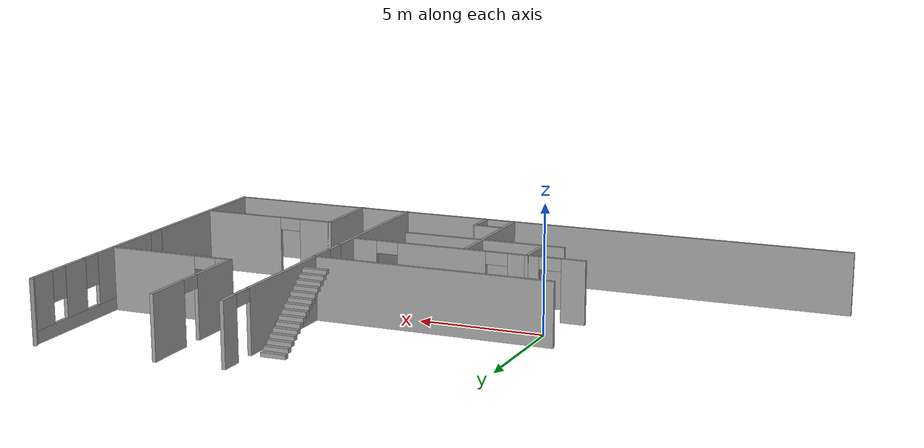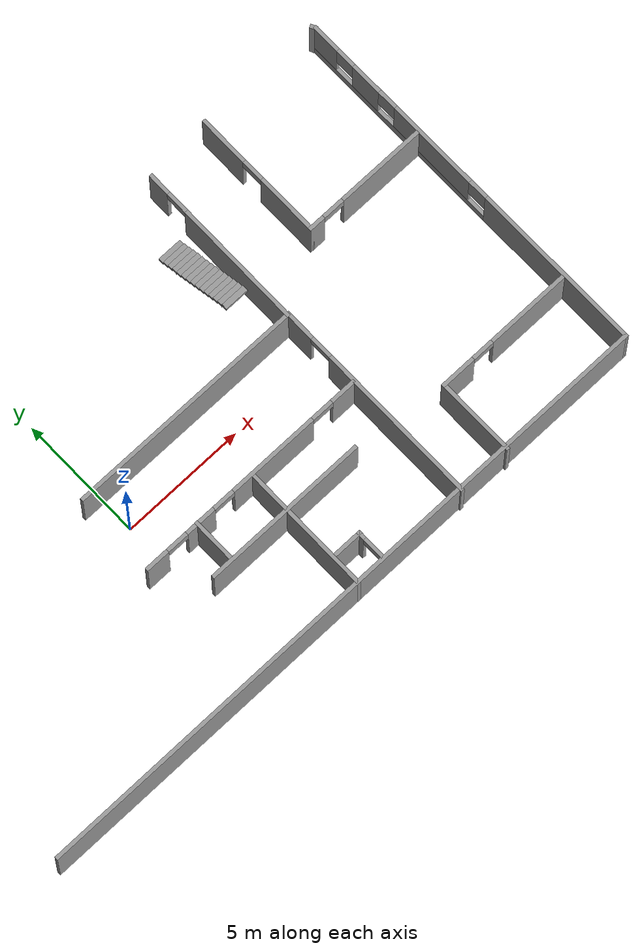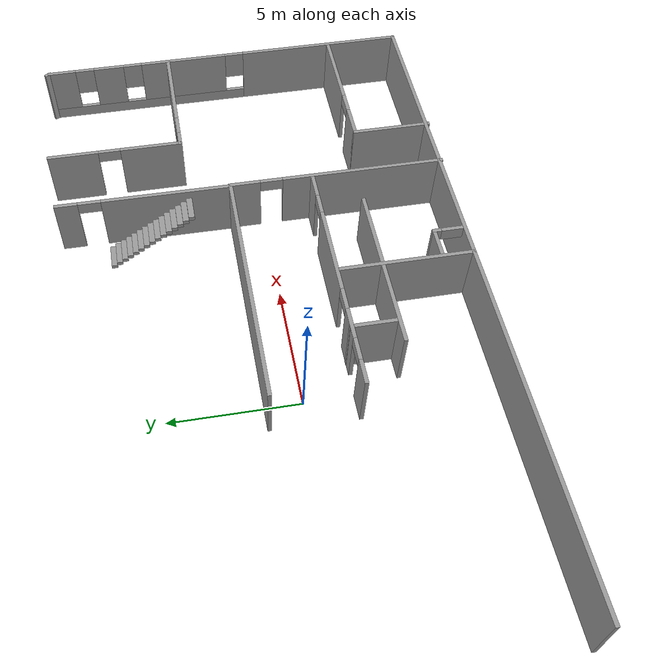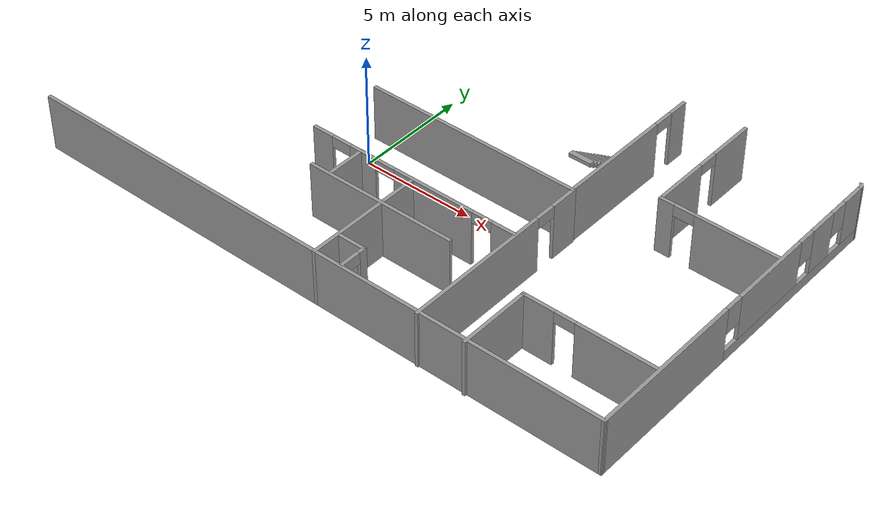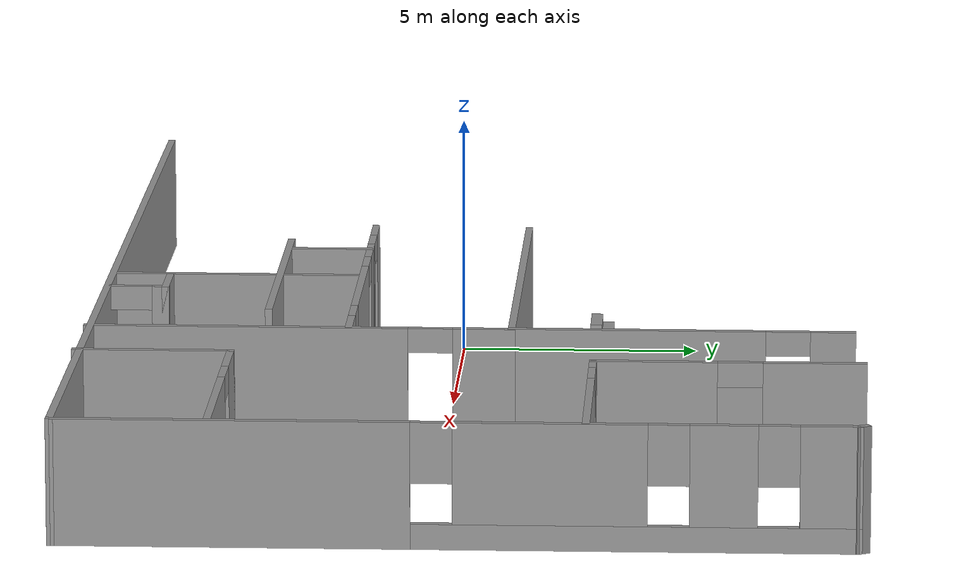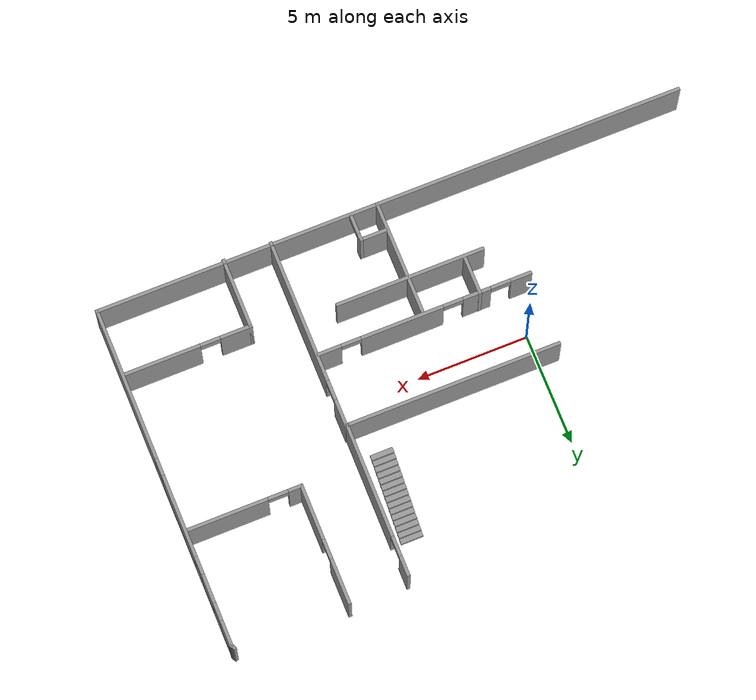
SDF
<sdf version="1.7">
 <model name="Dundler_mifflin">
  <pose>0.058754 0.032766 0 0 -0 0</pose>
  <link name="Stairs_1">
   <visual name="Stairs_1_Visual_0">
    <pose>7.80793 6.29097 0.083333 0 -0 0</pose>
    <geometry><box><size>1 0.233333 0.166667</size></box></geometry>
    <material>
     <script><uri>file://media/materials/scripts/gazebo.material</uri><name>Gazebo/Grey</name></script>
     <ambient>1 1 1 1</ambient>
    </material>
    <meta><layer>0</layer></meta>
   </visual>
   <collision name="Stairs_1_Collision_0">
    <geometry><box><size>1 0.233333 0.166667</size></box></geometry>
    <pose>7.80793 6.29097 0.083333 0 -0 0</pose>
   </collision>
   <visual name="Stairs_1_Visual_1">
    <pose>7.80793 6.05764 0.25 0 -0 0</pose>
    <geometry><box><size>1 0.233333 0.166667</size></box></geometry>
    <material>
     <script><uri>file://media/materials/scripts/gazebo.material</uri><name>Gazebo/Grey</name></script>
     <ambient>1 1 1 1</ambient>
    </material>
    <meta><layer>0</layer></meta>
   </visual>
   <collision name="Stairs_1_Collision_1">
    <geometry><box><size>1 0.233333 0.166667</size></box></geometry>
    <pose>7.80793 6.05764 0.25 0 -0 0</pose>
   </collision>
   <visual name="Stairs_1_Visual_2">
    <pose>7.80793 5.8243 0.416667 0 -0 0</pose>
    <geometry><box><size>1 0.233333 0.166667</size></box></geometry>
    <material>
     <script><uri>file://media/materials/scripts/gazebo.material</uri><name>Gazebo/Grey</name></script>
     <ambient>1 1 1 1</ambient>
    </material>
    <meta><layer>0</layer></meta>
   </visual>
   <collision name="Stairs_1_Collision_2">
    <geometry><box><size>1 0.233333 0.166667</size></box></geometry>
    <pose>7.80793 5.8243 0.416667 0 -0 0</pose>
   </collision>
   <visual name="Stairs_1_Visual_3">
    <pose>7.80793 5.59097 0.583333 0 -0 0</pose>
    <geometry><box><size>1 0.233333 0.166667</size></box></geometry>
    <material>
     <script><uri>file://media/materials/scripts/gazebo.material</uri><name>Gazebo/Grey</name></script>
     <ambient>1 1 1 1</ambient>
    </material>
    <meta><layer>0</layer></meta>
   </visual>
   <collision name="Stairs_1_Collision_3">
    <geometry><box><size>1 0.233333 0.166667</size></box></geometry>
    <pose>7.80793 5.59097 0.583333 0 -0 0</pose>
   </collision>
   <visual name="Stairs_1_Visual_4">
    <pose>7.80793 5.35764 0.75 0 -0 0</pose>
    <geometry><box><size>1 0.233333 0.166667</size></box></geometry>
    <material>
     <script><uri>file://media/materials/scripts/gazebo.material</uri><name>Gazebo/Grey</name></script>
     <ambient>1 1 1 1</ambient>
    </material>
    <meta><layer>0</layer></meta>
   </visual>
   <collision name="Stairs_1_Collision_4">
    <geometry><box><size>1 0.233333 0.166667</size></box></geometry>
    <pose>7.80793 5.35764 0.75 0 -0 0</pose>
   </collision>
   <visual name="Stairs_1_Visual_5">
    <pose>7.80793 5.1243 0.916667 0 -0 0</pose>
    <geometry><box><size>1 0.233333 0.166667</size></box></geometry>
    <material>
     <script><uri>file://media/materials/scripts/gazebo.material</uri><name>Gazebo/Grey</name></script>
     <ambient>1 1 1 1</ambient>
    </material>
    <meta><layer>0</layer></meta>
   </visual>
   <collision name="Stairs_1_Collision_5">
    <geometry><box><size>1 0.233333 0.166667</size></box></geometry>
    <pose>7.80793 5.1243 0.916667 0 -0 0</pose>
   </collision>
   <visual name="Stairs_1_Visual_6">
    <pose>7.80793 4.89097 1.08333 0 -0 0</pose>
    <geometry><box><size>1 0.233333 0.166667</size></box></geometry>
    <material>
     <script><uri>file://media/materials/scripts/gazebo.material</uri><name>Gazebo/Grey</name></script>
     <ambient>1 1 1 1</ambient>
    </material>
    <meta><layer>0</layer></meta>
   </visual>
   <collision name="Stairs_1_Collision_6">
    <geometry><box><size>1 0.233333 0.166667</size></box></geometry>
    <pose>7.80793 4.89097 1.08333 0 -0 0</pose>
   </collision>
   <visual name="Stairs_1_Visual_7">
    <pose>7.80793 4.65763 1.25 0 -0 0</pose>
    <geometry><box><size>1 0.233333 0.166667</size></box></geometry>
    <material>
     <script><uri>file://media/materials/scripts/gazebo.material</uri><name>Gazebo/Grey</name></script>
     <ambient>1 1 1 1</ambient>
    </material>
    <meta><layer>0</layer></meta>
   </visual>
   <collision name="Stairs_1_Collision_7">
    <geometry><box><size>1 0.233333 0.166667</size></box></geometry>
    <pose>7.80793 4.65763 1.25 0 -0 0</pose>
   </collision>
   <visual name="Stairs_1_Visual_8">
    <pose>7.80793 4.4243 1.41667 0 -0 0</pose>
    <geometry><box><size>1 0.233333 0.166667</size></box></geometry>
    <material>
     <script><uri>file://media/materials/scripts/gazebo.material</uri><name>Gazebo/Grey</name></script>
     <ambient>1 1 1 1</ambient>
    </material>
    <meta><layer>0</layer></meta>
   </visual>
   <collision name="Stairs_1_Collision_8">
    <geometry><box><size>1 0.233333 0.166667</size></box></geometry>
    <pose>7.80793 4.4243 1.41667 0 -0 0</pose>
   </collision>
   <visual name="Stairs_1_Visual_9">
    <pose>7.80793 4.19097 1.58333 0 -0 0</pose>
    <geometry><box><size>1 0.233333 0.166667</size></box></geometry>
    <material>
     <script><uri>file://media/materials/scripts/gazebo.material</uri><name>Gazebo/Grey</name></script>
     <ambient>1 1 1 1</ambient>
    </material>
    <meta><layer>0</layer></meta>
   </visual>
   <collision name="Stairs_1_Collision_9">
    <geometry><box><size>1 0.233333 0.166667</size></box></geometry>
    <pose>7.80793 4.19097 1.58333 0 -0 0</pose>
   </collision>
   <visual name="Stairs_1_Visual_10">
    <pose>7.80793 3.95763 1.75 0 -0 0</pose>
    <geometry><box><size>1 0.233333 0.166667</size></box></geometry>
    <material>
     <script><uri>file://media/materials/scripts/gazebo.material</uri><name>Gazebo/Grey</name></script>
     <ambient>1 1 1 1</ambient>
    </material>
    <meta><layer>0</layer></meta>
   </visual>
   <collision name="Stairs_1_Collision_10">
    <geometry><box><size>1 0.233333 0.166667</size></box></geometry>
    <pose>7.80793 3.95763 1.75 0 -0 0</pose>
   </collision>
   <visual name="Stairs_1_Visual_11">
    <pose>7.80793 3.7243 1.91667 0 -0 0</pose>
    <geometry><box><size>1 0.233333 0.166667</size></box></geometry>
    <material>
     <script><uri>file://media/materials/scripts/gazebo.material</uri><name>Gazebo/Grey</name></script>
     <ambient>1 1 1 1</ambient>
    </material>
    <meta><layer>0</layer></meta>
   </visual>
   <collision name="Stairs_1_Collision_11">
    <geometry><box><size>1 0.233333 0.166667</size></box></geometry>
    <pose>7.80793 3.7243 1.91667 0 -0 0</pose>
   </collision>
   <visual name="Stairs_1_Visual_12">
    <pose>7.80793 3.49097 2.08333 0 -0 0</pose>
    <geometry><box><size>1 0.233333 0.166667</size></box></geometry>
    <material>
     <script><uri>file://media/materials/scripts/gazebo.material</uri><name>Gazebo/Grey</name></script>
     <ambient>1 1 1 1</ambient>
    </material>
    <meta><layer>0</layer></meta>
   </visual>
   <collision name="Stairs_1_Collision_12">
    <geometry><box><size>1 0.233333 0.166667</size></box></geometry>
    <pose>7.80793 3.49097 2.08333 0 -0 0</pose>
   </collision>
   <visual name="Stairs_1_Visual_13">
    <pose>7.80793 3.25764 2.25 0 -0 0</pose>
    <geometry><box><size>1 0.233333 0.166667</size></box></geometry>
    <material>
     <script><uri>file://media/materials/scripts/gazebo.material</uri><name>Gazebo/Grey</name></script>
     <ambient>1 1 1 1</ambient>
    </material>
    <meta><layer>0</layer></meta>
   </visual>
   <collision name="Stairs_1_Collision_13">
    <geometry><box><size>1 0.233333 0.166667</size></box></geometry>
    <pose>7.80793 3.25764 2.25 0 -0 0</pose>
   </collision>
   <visual name="Stairs_1_Visual_14">
    <pose>7.80793 3.0243 2.41667 0 -0 0</pose>
    <geometry><box><size>1 0.233333 0.166667</size></box></geometry>
    <material>
     <script><uri>file://media/materials/scripts/gazebo.material</uri><name>Gazebo/Grey</name></script>
     <ambient>1 1 1 1</ambient>
    </material>
    <meta><layer>0</layer></meta>
   </visual>
   <collision name="Stairs_1_Collision_14">
    <geometry><box><size>1 0.233333 0.166667</size></box></geometry>
    <pose>7.80793 3.0243 2.41667 0 -0 0</pose>
   </collision>
  </link>
  <link name="Wall_16">
   <collision name="Wall_16_Collision">
    <geometry><box><size>9.72356 0.15 2.5</size></box></geometry>
    <pose>0 0 1.25 0 -0 0</pose>
   </collision>
   <visual name="Wall_16_Visual">
    <pose>0 0 1.25 0 -0 0</pose>
    <geometry><box><size>9.72356 0.15 2.5</size></box></geometry>
    <material>
     <script><uri>file://media/materials/scripts/gazebo.material</uri><name>Gazebo/Grey</name></script>
     <ambient>1 1 1 1</ambient>
    </material>
    <meta><layer>0</layer></meta>
   </visual>
   <pose>3.91536 1.33297 0 0 -0 -0.001938</pose>
  </link>
  <link name="Wall_17">
   <pose>8.71536 4.75797 0 0 -0 1.56694</pose>
   <visual name="Wall_17_Visual_0">
    <pose>-0.909005 0 1.25 0 -0 0</pose>
    <geometry><box><size>5.20056 0.15 2.5</size></box></geometry>
    <material>
     <script><uri>file://media/materials/scripts/gazebo.material</uri><name>Gazebo/Grey</name></script>
     <ambient>1 1 1 1</ambient>
    </material>
    <meta><layer>0</layer></meta>
   </visual>
   <collision name="Wall_17_Collision_0">
    <geometry><box><size>5.20056 0.15 2.5</size></box></geometry>
    <pose>-0.909005 0 1.25 0 -0 0</pose>
   </collision>
   <visual name="Wall_17_Visual_1">
    <pose>3.05028 0 1.25 0 -0 0</pose>
    <geometry><box><size>0.91801 0.15 2.5</size></box></geometry>
    <material>
     <script><uri>file://media/materials/scripts/gazebo.material</uri><name>Gazebo/Grey</name></script>
     <ambient>1 1 1 1</ambient>
    </material>
    <meta><layer>0</layer></meta>
   </visual>
   <collision name="Wall_17_Collision_1">
    <geometry><box><size>0.91801 0.15 2.5</size></box></geometry>
    <pose>3.05028 0 1.25 0 -0 0</pose>
   </collision>
   <visual name="Wall_17_Visual_2">
    <pose>2.14127 0 2.25 0 -0 0</pose>
    <geometry><box><size>0.9 0.15 0.5</size></box></geometry>
    <material>
     <script><uri>file://media/materials/scripts/gazebo.material</uri><name>Gazebo/Grey</name></script>
     <ambient>1 1 1 1</ambient>
    </material>
    <meta><layer>0</layer></meta>
   </visual>
   <collision name="Wall_17_Collision_2">
    <geometry><box><size>0.9 0.15 0.5</size></box></geometry>
    <pose>2.14127 0 2.25 0 -0 0</pose>
   </collision>
  </link>
  <link name="Wall_19">
   <pose>8.74259 -2.97631 0 0 -0 -1.5708</pose>
   <visual name="Wall_19_Visual_0">
    <pose>-3.73996 0 1.25 0 -0 0</pose>
    <geometry><box><size>1.27008 0.15 2.5</size></box></geometry>
    <material>
     <script><uri>file://media/materials/scripts/gazebo.material</uri><name>Gazebo/Grey</name></script>
     <ambient>1 1 1 1</ambient>
    </material>
    <meta><layer>0</layer></meta>
   </visual>
   <collision name="Wall_19_Collision_0">
    <geometry><box><size>1.27008 0.15 2.5</size></box></geometry>
    <pose>-3.73996 0 1.25 0 -0 0</pose>
   </collision>
   <visual name="Wall_19_Visual_1">
    <pose>1.08504 0 1.25 0 -0 0</pose>
    <geometry><box><size>6.57992 0.15 2.5</size></box></geometry>
    <material>
     <script><uri>file://media/materials/scripts/gazebo.material</uri><name>Gazebo/Grey</name></script>
     <ambient>1 1 1 1</ambient>
    </material>
    <meta><layer>0</layer></meta>
   </visual>
   <collision name="Wall_19_Collision_1">
    <geometry><box><size>6.57992 0.15 2.5</size></box></geometry>
    <pose>1.08504 0 1.25 0 -0 0</pose>
   </collision>
   <visual name="Wall_19_Visual_2">
    <pose>-2.65492 0 2.25 0 -0 0</pose>
    <geometry><box><size>0.9 0.15 0.5</size></box></geometry>
    <material>
     <script><uri>file://media/materials/scripts/gazebo.material</uri><name>Gazebo/Grey</name></script>
     <ambient>1 1 1 1</ambient>
    </material>
    <meta><layer>0</layer></meta>
   </visual>
   <collision name="Wall_19_Collision_2">
    <geometry><box><size>0.9 0.15 0.5</size></box></geometry>
    <pose>-2.65492 0 2.25 0 -0 0</pose>
   </collision>
  </link>
  <link name="Wall_21">
   <pose>3.86393 -1.97588 0 0 -0 0</pose>
   <visual name="Wall_21_Visual_0">
    <pose>-4.38876 0 1.25 0 -0 0</pose>
    <geometry><box><size>0.972488 0.15 2.5</size></box></geometry>
    <material>
     <script><uri>file://media/materials/scripts/gazebo.material</uri><name>Gazebo/Grey</name></script>
     <ambient>1 1 1 1</ambient>
    </material>
    <meta><layer>0</layer></meta>
   </visual>
   <collision name="Wall_21_Collision_0">
    <geometry><box><size>0.972488 0.15 2.5</size></box></geometry>
    <pose>-4.38876 0 1.25 0 -0 0</pose>
   </collision>
   <visual name="Wall_21_Visual_1">
    <pose>-2.36833 0 1.25 0 -0 0</pose>
    <geometry><box><size>1.26836 0.15 2.5</size></box></geometry>
    <material>
     <script><uri>file://media/materials/scripts/gazebo.material</uri><name>Gazebo/Grey</name></script>
     <ambient>1 1 1 1</ambient>
    </material>
    <meta><layer>0</layer></meta>
   </visual>
   <collision name="Wall_21_Collision_1">
    <geometry><box><size>1.26836 0.15 2.5</size></box></geometry>
    <pose>-2.36833 0 1.25 0 -0 0</pose>
   </collision>
   <visual name="Wall_21_Visual_2">
    <pose>1.02891 0 1.25 0 -0 0</pose>
    <geometry><box><size>3.72612 0.15 2.5</size></box></geometry>
    <material>
     <script><uri>file://media/materials/scripts/gazebo.material</uri><name>Gazebo/Grey</name></script>
     <ambient>1 1 1 1</ambient>
    </material>
    <meta><layer>0</layer></meta>
   </visual>
   <collision name="Wall_21_Collision_2">
    <geometry><box><size>3.72612 0.15 2.5</size></box></geometry>
    <pose>1.02891 0 1.25 0 -0 0</pose>
   </collision>
   <visual name="Wall_21_Visual_3">
    <pose>4.33349 0 1.25 0 -0 0</pose>
    <geometry><box><size>1.08303 0.15 2.5</size></box></geometry>
    <material>
     <script><uri>file://media/materials/scripts/gazebo.material</uri><name>Gazebo/Grey</name></script>
     <ambient>1 1 1 1</ambient>
    </material>
    <meta><layer>0</layer></meta>
   </visual>
   <collision name="Wall_21_Collision_3">
    <geometry><box><size>1.08303 0.15 2.5</size></box></geometry>
    <pose>4.33349 0 1.25 0 -0 0</pose>
   </collision>
   <visual name="Wall_21_Visual_4">
    <pose>-3.45251 0 2.25 0 -0 0</pose>
    <geometry><box><size>0.9 0.15 0.5</size></box></geometry>
    <material>
     <script><uri>file://media/materials/scripts/gazebo.material</uri><name>Gazebo/Grey</name></script>
     <ambient>1 1 1 1</ambient>
    </material>
    <meta><layer>0</layer></meta>
   </visual>
   <collision name="Wall_21_Collision_4">
    <geometry><box><size>0.9 0.15 0.5</size></box></geometry>
    <pose>-3.45251 0 2.25 0 -0 0</pose>
   </collision>
   <visual name="Wall_21_Visual_5">
    <pose>-1.28415 0 2.25 0 -0 0</pose>
    <geometry><box><size>0.9 0.15 0.5</size></box></geometry>
    <material>
     <script><uri>file://media/materials/scripts/gazebo.material</uri><name>Gazebo/Grey</name></script>
     <ambient>1 1 1 1</ambient>
    </material>
    <meta><layer>0</layer></meta>
   </visual>
   <collision name="Wall_21_Collision_5">
    <geometry><box><size>0.9 0.15 0.5</size></box></geometry>
    <pose>-1.28415 0 2.25 0 -0 0</pose>
   </collision>
   <visual name="Wall_21_Visual_6">
    <pose>3.34197 0 2.25 0 -0 0</pose>
    <geometry><box><size>0.9 0.15 0.5</size></box></geometry>
    <material>
     <script><uri>file://media/materials/scripts/gazebo.material</uri><name>Gazebo/Grey</name></script>
     <ambient>1 1 1 1</ambient>
    </material>
    <meta><layer>0</layer></meta>
   </visual>
   <collision name="Wall_21_Collision_6">
    <geometry><box><size>0.9 0.15 0.5</size></box></geometry>
    <pose>3.34197 0 2.25 0 -0 0</pose>
   </collision>
  </link>
  <link name="Wall_23">
   <collision name="Wall_23_Collision">
    <geometry><box><size>5.25 0.15 2.5</size></box></geometry>
    <pose>0 0 1.25 0 -0 0</pose>
   </collision>
   <visual name="Wall_23_Visual">
    <pose>0 0 1.25 0 -0 0</pose>
    <geometry><box><size>5.25 0.15 2.5</size></box></geometry>
    <material>
     <script><uri>file://media/materials/scripts/gazebo.material</uri><name>Gazebo/Grey</name></script>
     <ambient>1 1 1 1</ambient>
    </material>
    <meta><layer>0</layer></meta>
   </visual>
   <pose>3.92136 -4.66467 0 0 -0 -1.5708</pose>
  </link>
  <link name="Wall_25">
   <collision name="Wall_25_Collision">
    <geometry><box><size>6.75 0.15 2.5</size></box></geometry>
    <pose>0 0 1.25 0 -0 0</pose>
   </collision>
   <visual name="Wall_25_Visual">
    <pose>0 0 1.25 0 -0 0</pose>
    <geometry><box><size>6.75 0.15 2.5</size></box></geometry>
    <material>
     <script><uri>file://media/materials/scripts/gazebo.material</uri><name>Gazebo/Grey</name></script>
     <ambient>1 1 1 1</ambient>
    </material>
    <meta><layer>0</layer></meta>
   </visual>
   <pose>3.82116 -3.71068 0 0 -0 0</pose>
  </link>
  <link name="Wall_27">
   <pose>11.4275 5.71132 0 0 -0 -1.5708</pose>
   <visual name="Wall_27_Visual_0">
    <pose>-1.71906 0 1.25 0 -0 0</pose>
    <geometry><box><size>2.06188 0.15 2.5</size></box></geometry>
    <material>
     <script><uri>file://media/materials/scripts/gazebo.material</uri><name>Gazebo/Grey</name></script>
     <ambient>1 1 1 1</ambient>
    </material>
    <meta><layer>0</layer></meta>
   </visual>
   <collision name="Wall_27_Collision_0">
    <geometry><box><size>2.06188 0.15 2.5</size></box></geometry>
    <pose>-1.71906 0 1.25 0 -0 0</pose>
   </collision>
   <visual name="Wall_27_Visual_1">
    <pose>1.48094 0 1.25 0 -0 0</pose>
    <geometry><box><size>2.53812 0.15 2.5</size></box></geometry>
    <material>
     <script><uri>file://media/materials/scripts/gazebo.material</uri><name>Gazebo/Grey</name></script>
     <ambient>1 1 1 1</ambient>
    </material>
    <meta><layer>0</layer></meta>
   </visual>
   <collision name="Wall_27_Collision_1">
    <geometry><box><size>2.53812 0.15 2.5</size></box></geometry>
    <pose>1.48094 0 1.25 0 -0 0</pose>
   </collision>
   <visual name="Wall_27_Visual_2">
    <pose>-0.238121 0 2.25 0 -0 0</pose>
    <geometry><box><size>0.9 0.15 0.5</size></box></geometry>
    <material>
     <script><uri>file://media/materials/scripts/gazebo.material</uri><name>Gazebo/Grey</name></script>
     <ambient>1 1 1 1</ambient>
    </material>
    <meta><layer>0</layer></meta>
   </visual>
   <collision name="Wall_27_Collision_2">
    <geometry><box><size>0.9 0.15 0.5</size></box></geometry>
    <pose>-0.238121 0 2.25 0 -0 0</pose>
   </collision>
  </link>
  <link name="Wall_28">
   <pose>13.9775 3.03632 0 0 -0 0</pose>
   <visual name="Wall_28_Visual_0">
    <pose>-2.28737 0 1.25 0 -0 0</pose>
    <geometry><box><size>0.675255 0.15 2.5</size></box></geometry>
    <material>
     <script><uri>file://media/materials/scripts/gazebo.material</uri><name>Gazebo/Grey</name></script>
     <ambient>1 1 1 1</ambient>
    </material>
    <meta><layer>0</layer></meta>
   </visual>
   <collision name="Wall_28_Collision_0">
    <geometry><box><size>0.675255 0.15 2.5</size></box></geometry>
    <pose>-2.28737 0 1.25 0 -0 0</pose>
   </collision>
   <visual name="Wall_28_Visual_1">
    <pose>0.787627 0 1.25 0 -0 0</pose>
    <geometry><box><size>3.67475 0.15 2.5</size></box></geometry>
    <material>
     <script><uri>file://media/materials/scripts/gazebo.material</uri><name>Gazebo/Grey</name></script>
     <ambient>1 1 1 1</ambient>
    </material>
    <meta><layer>0</layer></meta>
   </visual>
   <collision name="Wall_28_Collision_1">
    <geometry><box><size>3.67475 0.15 2.5</size></box></geometry>
    <pose>0.787627 0 1.25 0 -0 0</pose>
   </collision>
   <visual name="Wall_28_Visual_2">
    <pose>-1.49975 0 2.25 0 -0 0</pose>
    <geometry><box><size>0.9 0.15 0.5</size></box></geometry>
    <material>
     <script><uri>file://media/materials/scripts/gazebo.material</uri><name>Gazebo/Grey</name></script>
     <ambient>1 1 1 1</ambient>
    </material>
    <meta><layer>0</layer></meta>
   </visual>
   <collision name="Wall_28_Collision_2">
    <geometry><box><size>0.9 0.15 0.5</size></box></geometry>
    <pose>-1.49975 0 2.25 0 -0 0</pose>
   </collision>
  </link>
  <link name="Wall_32">
   <collision name="Wall_32_Collision">
    <geometry><box><size>1.75 0.15 2.5</size></box></geometry>
    <pose>0 0 1.25 0 -0 0</pose>
   </collision>
   <visual name="Wall_32_Visual">
    <pose>0 0 1.25 0 -0 0</pose>
    <geometry><box><size>1.75 0.15 2.5</size></box></geometry>
    <material>
     <script><uri>file://media/materials/scripts/gazebo.material</uri><name>Gazebo/Grey</name></script>
     <ambient>1 1 1 1</ambient>
    </material>
    <meta><layer>0</layer></meta>
   </visual>
   <pose>1.36125 -2.76578 0 0 -0 -1.5708</pose>
  </link>
  <link name="Wall_40">
   <collision name="Wall_40_Collision">
    <geometry><box><size>3.25 0.15 2.5</size></box></geometry>
    <pose>0 0 1.25 0 -0 0</pose>
   </collision>
   <visual name="Wall_40_Visual">
    <pose>0 0 1.25 0 -0 0</pose>
    <geometry><box><size>3.25 0.15 2.5</size></box></geometry>
    <material>
     <script><uri>file://media/materials/scripts/gazebo.material</uri><name>Gazebo/Grey</name></script>
     <ambient>1 1 1 1</ambient>
    </material>
    <meta><layer>0</layer></meta>
   </visual>
   <pose>10.8761 -5.75105 0 0 -0 1.5708</pose>
  </link>
  <link name="Wall_41">
   <pose>13.6761 -4.20105 0 0 -0 0</pose>
   <visual name="Wall_41_Visual_0">
    <pose>-2.15225 0 1.25 0 -0 0</pose>
    <geometry><box><size>1.4455 0.15 2.5</size></box></geometry>
    <material>
     <script><uri>file://media/materials/scripts/gazebo.material</uri><name>Gazebo/Grey</name></script>
     <ambient>1 1 1 1</ambient>
    </material>
    <meta><layer>0</layer></meta>
   </visual>
   <collision name="Wall_41_Collision_0">
    <geometry><box><size>1.4455 0.15 2.5</size></box></geometry>
    <pose>-2.15225 0 1.25 0 -0 0</pose>
   </collision>
   <visual name="Wall_41_Visual_1">
    <pose>1.17275 0 1.25 0 -0 0</pose>
    <geometry><box><size>3.4045 0.15 2.5</size></box></geometry>
    <material>
     <script><uri>file://media/materials/scripts/gazebo.material</uri><name>Gazebo/Grey</name></script>
     <ambient>1 1 1 1</ambient>
    </material>
    <meta><layer>0</layer></meta>
   </visual>
   <collision name="Wall_41_Collision_1">
    <geometry><box><size>3.4045 0.15 2.5</size></box></geometry>
    <pose>1.17275 0 1.25 0 -0 0</pose>
   </collision>
   <visual name="Wall_41_Visual_2">
    <pose>-0.9795 0 2.25 0 -0 0</pose>
    <geometry><box><size>0.9 0.15 0.5</size></box></geometry>
    <material>
     <script><uri>file://media/materials/scripts/gazebo.material</uri><name>Gazebo/Grey</name></script>
     <ambient>1 1 1 1</ambient>
    </material>
    <meta><layer>0</layer></meta>
   </visual>
   <collision name="Wall_41_Collision_2">
    <geometry><box><size>0.9 0.15 0.5</size></box></geometry>
    <pose>-0.9795 0 2.25 0 -0 0</pose>
   </collision>
  </link>
  <link name="Wall_43">
   <collision name="Wall_43_Collision">
    <geometry><box><size>1.25 0.15 2.5</size></box></geometry>
    <pose>0 0 1.25 0 -0 0</pose>
   </collision>
   <visual name="Wall_43_Visual">
    <pose>0 0 1.25 0 -0 0</pose>
    <geometry><box><size>1.25 0.15 2.5</size></box></geometry>
    <material>
     <script><uri>file://media/materials/scripts/gazebo.material</uri><name>Gazebo/Grey</name></script>
     <ambient>1 1 1 1</ambient>
    </material>
    <meta><layer>0</layer></meta>
   </visual>
   <pose>4.58911 -6.00647 0 0 -0 0</pose>
  </link>
  <link name="Wall_44">
   <pose>5.13911 -6.55647 0 0 -0 -1.5708</pose>
   <visual name="Wall_44_Visual_0">
    <pose>-0.4484 0 1.25 0 -0 0</pose>
    <geometry><box><size>0.3532 0.15 2.5</size></box></geometry>
    <material>
     <script><uri>file://media/materials/scripts/gazebo.material</uri><name>Gazebo/Grey</name></script>
     <ambient>1 1 1 1</ambient>
    </material>
    <meta><layer>0</layer></meta>
   </visual>
   <collision name="Wall_44_Collision_0">
    <geometry><box><size>0.3532 0.15 2.5</size></box></geometry>
    <pose>-0.4484 0 1.25 0 -0 0</pose>
   </collision>
   <visual name="Wall_44_Visual_1">
    <pose>0.1766 0 2.25 0 -0 0</pose>
    <geometry><box><size>0.8968 0.15 0.5</size></box></geometry>
    <material>
     <script><uri>file://media/materials/scripts/gazebo.material</uri><name>Gazebo/Grey</name></script>
     <ambient>1 1 1 1</ambient>
    </material>
    <meta><layer>0</layer></meta>
   </visual>
   <collision name="Wall_44_Collision_1">
    <geometry><box><size>0.8968 0.15 0.5</size></box></geometry>
    <pose>0.1766 0 2.25 0 -0 0</pose>
   </collision>
  </link>
  <link name="Wall_5">
   <collision name="Wall_5_Collision">
    <geometry><box><size>26.75 0.15 2.5</size></box></geometry>
    <pose>0 0 1.25 0 -0 0</pose>
   </collision>
   <visual name="Wall_5_Visual">
    <pose>0 0 1.25 0 -0 0</pose>
    <geometry><box><size>26.75 0.15 2.5</size></box></geometry>
    <material>
     <script><uri>file://media/materials/scripts/gazebo.material</uri><name>Gazebo/Grey</name></script>
     <ambient>1 1 1 1</ambient>
    </material>
    <meta><layer>0</layer></meta>
   </visual>
   <pose>3.33038 -7.21441 0 0 -0 0</pose>
  </link>
  <link name="Wall_6">
   <pose>16.6077 0.513998 0 0 -0 1.57373</pose>
   <visual name="Wall_6_Visual_0">
    <pose>-4.31589 0 1.25 0 -0 0</pose>
    <geometry><box><size>6.97527 0.15 2.5</size></box></geometry>
    <material>
     <script><uri>file://media/materials/scripts/gazebo.material</uri><name>Gazebo/Grey</name></script>
     <ambient>1 1 1 1</ambient>
    </material>
    <meta><layer>0</layer></meta>
   </visual>
   <collision name="Wall_6_Collision_0">
    <geometry><box><size>6.97527 0.15 2.5</size></box></geometry>
    <pose>-4.31589 0 1.25 0 -0 0</pose>
   </collision>
   <visual name="Wall_6_Visual_1">
    <pose>3.48764 0 0.25 0 -0 0</pose>
    <geometry><box><size>8.63179 0.15 0.5</size></box></geometry>
    <material>
     <script><uri>file://media/materials/scripts/gazebo.material</uri><name>Gazebo/Grey</name></script>
     <ambient>1 1 1 1</ambient>
    </material>
    <meta><layer>0</layer></meta>
   </visual>
   <collision name="Wall_6_Collision_1">
    <geometry><box><size>8.63179 0.15 0.5</size></box></geometry>
    <pose>3.48764 0 0.25 0 -0 0</pose>
   </collision>
   <visual name="Wall_6_Visual_2">
    <pose>1.83749 0 1.5 0 -0 0</pose>
    <geometry><box><size>3.73148 0.15 2</size></box></geometry>
    <material>
     <script><uri>file://media/materials/scripts/gazebo.material</uri><name>Gazebo/Grey</name></script>
     <ambient>1 1 1 1</ambient>
    </material>
    <meta><layer>0</layer></meta>
   </visual>
   <collision name="Wall_6_Collision_2">
    <geometry><box><size>3.73148 0.15 2</size></box></geometry>
    <pose>1.83749 0 1.5 0 -0 0</pose>
   </collision>
   <visual name="Wall_6_Visual_3">
    <pose>5.15477 0 1.5 0 -0 0</pose>
    <geometry><box><size>1.30309 0.15 2</size></box></geometry>
    <material>
     <script><uri>file://media/materials/scripts/gazebo.material</uri><name>Gazebo/Grey</name></script>
     <ambient>1 1 1 1</ambient>
    </material>
    <meta><layer>0</layer></meta>
   </visual>
   <collision name="Wall_6_Collision_3">
    <geometry><box><size>1.30309 0.15 2</size></box></geometry>
    <pose>5.15477 0 1.5 0 -0 0</pose>
   </collision>
   <visual name="Wall_6_Visual_4">
    <pose>7.20492 0 1.5 0 -0 0</pose>
    <geometry><box><size>1.19722 0.15 2</size></box></geometry>
    <material>
     <script><uri>file://media/materials/scripts/gazebo.material</uri><name>Gazebo/Grey</name></script>
     <ambient>1 1 1 1</ambient>
    </material>
    <meta><layer>0</layer></meta>
   </visual>
   <collision name="Wall_6_Collision_4">
    <geometry><box><size>1.19722 0.15 2</size></box></geometry>
    <pose>7.20492 0 1.5 0 -0 0</pose>
   </collision>
   <visual name="Wall_6_Visual_5">
    <pose>-0.428255 0 1.9 0 -0 0</pose>
    <geometry><box><size>0.8 0.15 1.2</size></box></geometry>
    <material>
     <script><uri>file://media/materials/scripts/gazebo.material</uri><name>Gazebo/Grey</name></script>
     <ambient>1 1 1 1</ambient>
    </material>
    <meta><layer>0</layer></meta>
   </visual>
   <collision name="Wall_6_Collision_5">
    <geometry><box><size>0.8 0.15 1.2</size></box></geometry>
    <pose>-0.428255 0 1.9 0 -0 0</pose>
   </collision>
   <visual name="Wall_6_Visual_6">
    <pose>4.10323 0 1.9 0 -0 0</pose>
    <geometry><box><size>0.8 0.15 1.2</size></box></geometry>
    <material>
     <script><uri>file://media/materials/scripts/gazebo.material</uri><name>Gazebo/Grey</name></script>
     <ambient>1 1 1 1</ambient>
    </material>
    <meta><layer>0</layer></meta>
   </visual>
   <collision name="Wall_6_Collision_6">
    <geometry><box><size>0.8 0.15 1.2</size></box></geometry>
    <pose>4.10323 0 1.9 0 -0 0</pose>
   </collision>
   <visual name="Wall_6_Visual_7">
    <pose>6.20631 0 1.9 0 -0 0</pose>
    <geometry><box><size>0.8 0.15 1.2</size></box></geometry>
    <material>
     <script><uri>file://media/materials/scripts/gazebo.material</uri><name>Gazebo/Grey</name></script>
     <ambient>1 1 1 1</ambient>
    </material>
    <meta><layer>0</layer></meta>
   </visual>
   <collision name="Wall_6_Collision_7">
    <geometry><box><size>0.8 0.15 1.2</size></box></geometry>
    <pose>6.20631 0 1.9 0 -0 0</pose>
   </collision>
  </link>
  <link name="Wall_7">
   <collision name="Wall_7_Collision">
    <geometry><box><size>0.294113 0.15 2.5</size></box></geometry>
    <pose>0 0 1.25 0 -0 0</pose>
   </collision>
   <visual name="Wall_7_Visual">
    <pose>0 0 1.25 0 -0 0</pose>
    <geometry><box><size>0.294113 0.15 2.5</size></box></geometry>
    <material>
     <script><uri>file://media/materials/scripts/gazebo.material</uri><name>Gazebo/Grey</name></script>
     <ambient>1 1 1 1</ambient>
    </material>
    <meta><layer>0</layer></meta>
   </visual>
   <pose>16.5538 8.30734 0 0 -0 2.01915</pose>
  </link>
  <static>1</static>
 </model>
</sdf>
